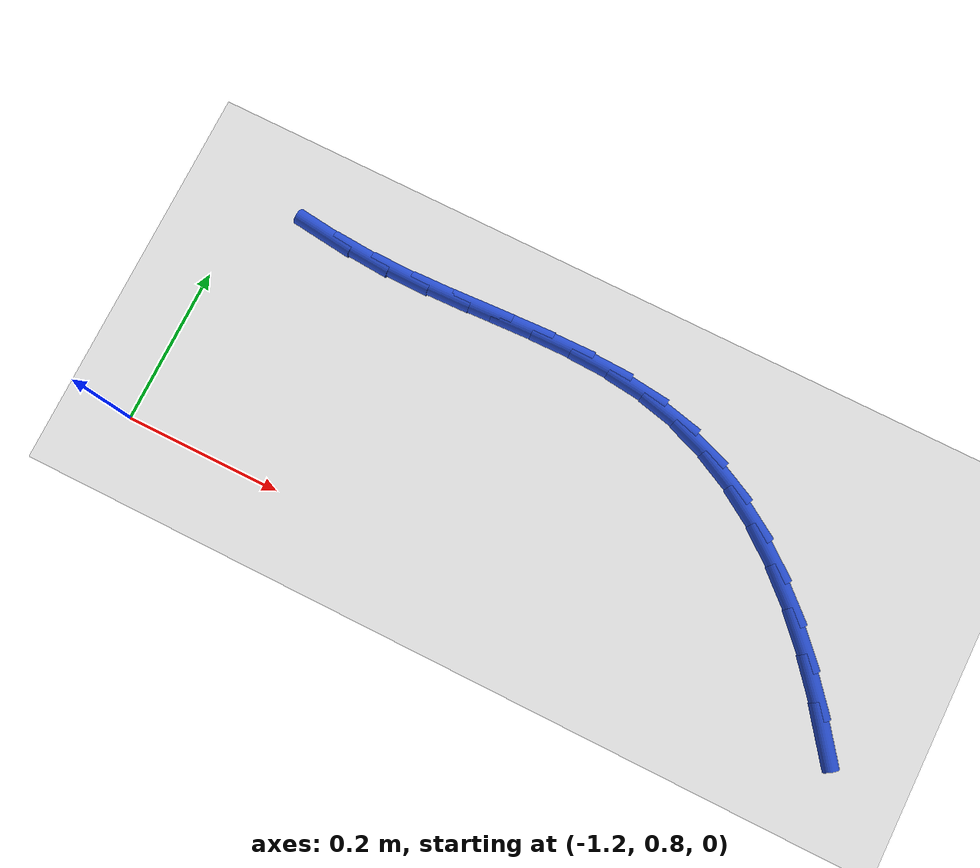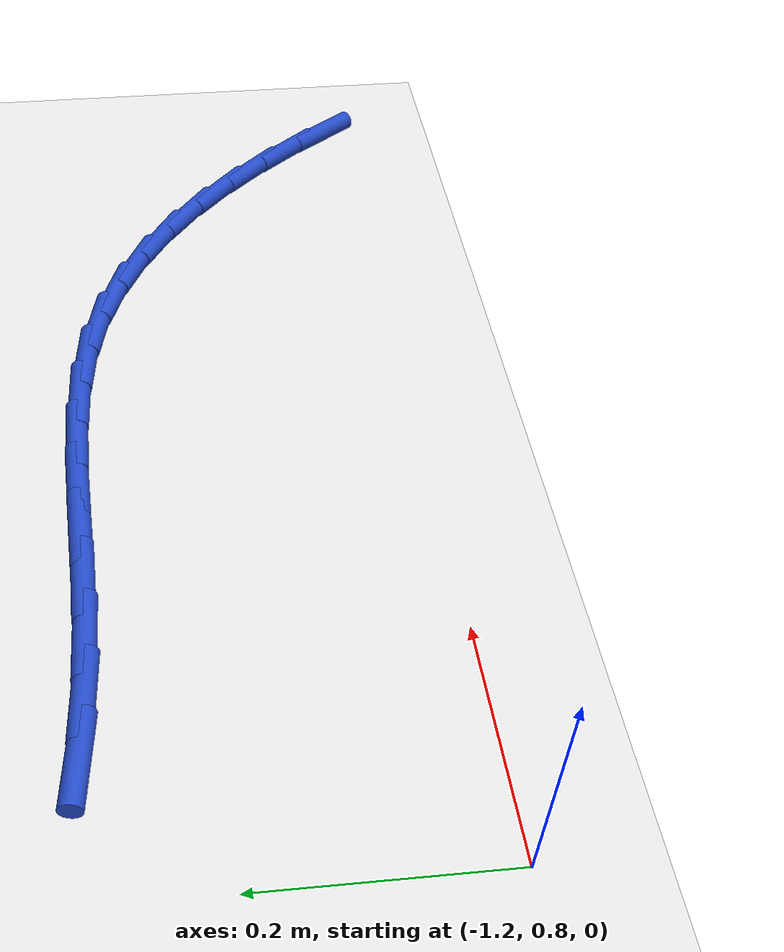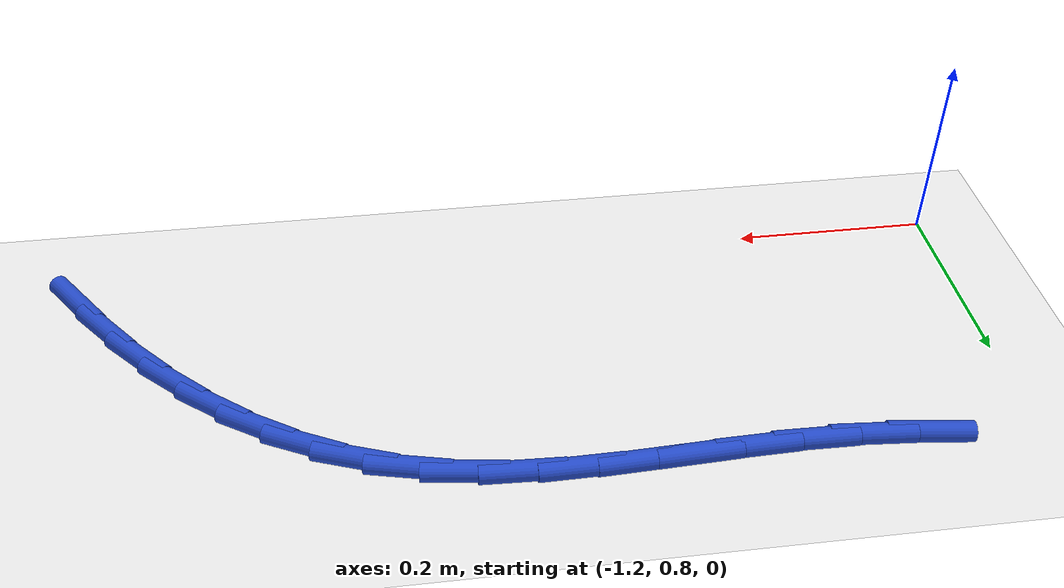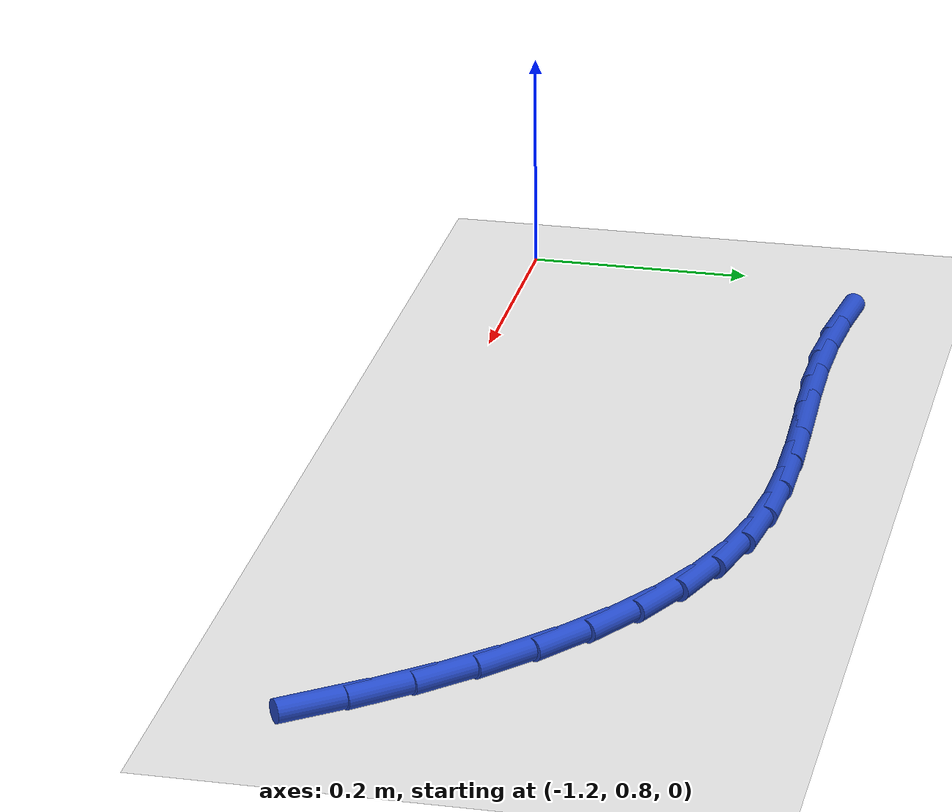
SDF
<sdf version="1.6">
 <world name="default">
  <model name="ground_plane">
   <static>1</static>
   <link name="link">
    <collision name="collision">
     <geometry><plane><normal>0 0 1</normal><size>100 100</size></plane></geometry>
     <surface><friction><ode><mu>100</mu><mu2>50</mu2></ode></friction></surface>
    </collision>
    <visual name="visual">
     <cast_shadows>0</cast_shadows>
     <geometry><plane><normal>0 0 1</normal><size>100 100</size></plane></geometry>
     <material>
      <script><uri>file://media/materials/scripts/gazebo.material</uri><name>Gazebo/WhiteGlow</name></script>
     </material>
    </visual>
   </link>
  </model>
  <model name="line">
   <link name="link_16">
    <pose>-0.2985263060611147 0.8291607156474057 0.01 0 1.57 -0.9376595781071306</pose>
    <collision name="collision">
     <geometry><cylinder><radius>0.01</radius><length>0.08</length></cylinder></geometry>
    </collision>
    <visual name="visual">
     <material>
      <script><name>Gazebo/Blue</name><uri>file://media/materials/scripts/gazebo.material</uri></script>
     </material>
     <geometry><cylinder><radius>0.01</radius><length>0.08</length></cylinder></geometry>
    </visual>
   </link>
   <link name="link_17">
    <pose>-0.33191441824124207 0.8746529436521213 0.01 0 1.57 -0.8812235999409279</pose>
    <collision name="collision">
     <geometry><cylinder><radius>0.01</radius><length>0.08</length></cylinder></geometry>
    </collision>
    <visual name="visual">
     <material>
      <script><name>Gazebo/Blue</name><uri>file://media/materials/scripts/gazebo.material</uri></script>
     </material>
     <geometry><cylinder><radius>0.01</radius><length>0.08</length></cylinder></geometry>
    </visual>
   </link>
   <link name="link_18">
    <pose>-0.3671163338067708 0.9173416965649344 0.01 0 1.57 -0.8168775620754979</pose>
    <collision name="collision">
     <geometry><cylinder><radius>0.01</radius><length>0.08</length></cylinder></geometry>
    </collision>
    <visual name="visual">
     <material>
      <script><name>Gazebo/Blue</name><uri>file://media/materials/scripts/gazebo.material</uri></script>
     </material>
     <geometry><cylinder><radius>0.01</radius><length>0.08</length></cylinder></geometry>
    </visual>
   </link>
   <link name="link_19">
    <pose>-0.4041742444052318 0.9568093829847586 0.01 0 1.57 -0.743608460455484</pose>
    <collision name="collision">
     <geometry><cylinder><radius>0.01</radius><length>0.08</length></cylinder></geometry>
    </collision>
    <visual name="visual">
     <material>
      <script><name>Gazebo/Blue</name><uri>file://media/materials/scripts/gazebo.material</uri></script>
     </material>
     <geometry><cylinder><radius>0.01</radius><length>0.08</length></cylinder></geometry>
    </visual>
   </link>
   <link name="link_20">
    <pose>-0.4431303416841561 0.9926384115105074 0.01 0 1.57 -0.6605006993845354</pose>
    <collision name="collision">
     <geometry><cylinder><radius>0.01</radius><length>0.08</length></cylinder></geometry>
    </collision>
    <visual name="visual">
     <material>
      <script><name>Gazebo/Blue</name><uri>file://media/materials/scripts/gazebo.material</uri></script>
     </material>
     <geometry><cylinder><radius>0.01</radius><length>0.08</length></cylinder></geometry>
    </visual>
   </link>
   <link name="link_21">
    <pose>-0.48402681729107483 1.024411190741095 0.01 0 1.57 -0.5669329177722653</pose>
    <collision name="collision">
     <geometry><cylinder><radius>0.01</radius><length>0.08</length></cylinder></geometry>
    </collision>
    <visual name="visual">
     <material>
      <script><name>Gazebo/Blue</name><uri>file://media/materials/scripts/gazebo.material</uri></script>
     </material>
     <geometry><cylinder><radius>0.01</radius><length>0.08</length></cylinder></geometry>
    </visual>
   </link>
   <link name="link_22">
    <pose>-0.5269058628735188 1.0517101292754347 0.01 0 1.57 -0.4628563224764566</pose>
    <collision name="collision">
     <geometry><cylinder><radius>0.01</radius><length>0.08</length></cylinder></geometry>
    </collision>
    <visual name="visual">
     <material>
      <script><name>Gazebo/Blue</name><uri>file://media/materials/scripts/gazebo.material</uri></script>
     </material>
     <geometry><cylinder><radius>0.01</radius><length>0.08</length></cylinder></geometry>
    </visual>
   </link>
   <link name="link_23">
    <pose>-0.5718096700790193 1.0741176357124411 0.01 0 1.57 -0.3491133038659414</pose>
    <collision name="collision">
     <geometry><cylinder><radius>0.01</radius><length>0.08</length></cylinder></geometry>
    </collision>
    <visual name="visual">
     <material>
      <script><name>Gazebo/Blue</name><uri>file://media/materials/scripts/gazebo.material</uri></script>
     </material>
     <geometry><cylinder><radius>0.01</radius><length>0.08</length></cylinder></geometry>
    </visual>
   </link>
   <link name="link_24">
    <pose>-0.6187804305551072 1.091216118651027 0.01 0 1.57 -0.22824404134933768</pose>
    <collision name="collision">
     <geometry><cylinder><radius>0.01</radius><length>0.08</length></cylinder></geometry>
    </collision>
    <visual name="visual">
     <material>
      <script><name>Gazebo/Blue</name><uri>file://media/materials/scripts/gazebo.material</uri></script>
     </material>
     <geometry><cylinder><radius>0.01</radius><length>0.08</length></cylinder></geometry>
    </visual>
   </link>
   <link name="link_25">
    <pose>-0.6678528323740427 1.1026152399058893 0.01 0 1.57 -0.11864713775809461</pose>
    <collision name="collision">
     <geometry><cylinder><radius>0.01</radius><length>0.08</length></cylinder></geometry>
    </collision>
    <visual name="visual">
     <material>
      <script><name>Gazebo/Blue</name><uri>file://media/materials/scripts/gazebo.material</uri></script>
     </material>
     <geometry><cylinder><radius>0.01</radius><length>0.08</length></cylinder></geometry>
    </visual>
   </link>
   <link name="link_26">
    <pose>-0.7188496284176339 1.1086944164109658 0.01 0 1.57 -0.038020621731585054</pose>
    <collision name="collision">
     <geometry><cylinder><radius>0.01</radius><length>0.08</length></cylinder></geometry>
    </collision>
    <visual name="visual">
     <material>
      <script><name>Gazebo/Blue</name><uri>file://media/materials/scripts/gazebo.material</uri></script>
     </material>
     <geometry><cylinder><radius>0.01</radius><length>0.08</length></cylinder></geometry>
    </visual>
   </link>
   <link name="link_27">
    <pose>-0.7713571521655634 1.1106917476280267 0.01 0 1.57 0.014950870576087174</pose>
    <collision name="collision">
     <geometry><cylinder><radius>0.01</radius><length>0.08</length></cylinder></geometry>
    </collision>
    <visual name="visual">
     <material>
      <script><name>Gazebo/Blue</name><uri>file://media/materials/scripts/gazebo.material</uri></script>
     </material>
     <geometry><cylinder><radius>0.01</radius><length>0.08</length></cylinder></geometry>
    </visual>
   </link>
   <link name="link_28">
    <pose>-0.8249493183250272 1.109890438381835 0.01 0 1.57 0.04267847432447619</pose>
    <collision name="collision">
     <geometry><cylinder><radius>0.01</radius><length>0.08</length></cylinder></geometry>
    </collision>
    <visual name="visual">
     <material>
      <script><name>Gazebo/Blue</name><uri>file://media/materials/scripts/gazebo.material</uri></script>
     </material>
     <geometry><cylinder><radius>0.01</radius><length>0.08</length></cylinder></geometry>
    </visual>
   </link>
   <link name="link_29">
    <pose>-0.8792000416032212 1.1075736934971545 0.01 0 1.57 0.046750532869200695</pose>
    <collision name="collision">
     <geometry><cylinder><radius>0.01</radius><length>0.08</length></cylinder></geometry>
    </collision>
    <visual name="visual">
     <material>
      <script><name>Gazebo/Blue</name><uri>file://media/materials/scripts/gazebo.material</uri></script>
     </material>
     <geometry><cylinder><radius>0.01</radius><length>0.08</length></cylinder></geometry>
    </visual>
   </link>
   <link name="link_30">
    <pose>-0.9336832367073407 1.1050247177987487 0.01 0 1.57 0.027585802681831847</pose>
    <collision name="collision">
     <geometry><cylinder><radius>0.01</radius><length>0.08</length></cylinder></geometry>
    </collision>
    <visual name="visual">
     <material>
      <script><name>Gazebo/Blue</name><uri>file://media/materials/scripts/gazebo.material</uri></script>
     </material>
     <geometry><cylinder><radius>0.01</radius><length>0.08</length></cylinder></geometry>
    </visual>
   </link>
   <link name="link_31">
    <pose>-0.9879728183445817 1.1035267161113809 0.01 0 1.57 -0.015559955053411446</pose>
    <collision name="collision">
     <geometry><cylinder><radius>0.01</radius><length>0.08</length></cylinder></geometry>
    </collision>
    <visual name="visual">
     <material>
      <script><name>Gazebo/Blue</name><uri>file://media/materials/scripts/gazebo.material</uri></script>
     </material>
     <geometry><cylinder><radius>0.01</radius><length>0.08</length></cylinder></geometry>
    </visual>
   </link>
   <link name="link_32">
    <pose>-1.0416430713244609 1.1043618902384897 0.01 0 1.57 -0.07422381804057417</pose>
    <collision name="collision">
     <geometry><cylinder><radius>0.01</radius><length>0.08</length></cylinder></geometry>
    </collision>
    <visual name="visual">
     <material>
      <script><name>Gazebo/Blue</name><uri>file://media/materials/scripts/gazebo.material</uri></script>
     </material>
     <geometry><cylinder><radius>0.01</radius><length>0.08</length></cylinder></geometry>
    </visual>
   </link>
   <link name="link_33">
    <pose>-1.094461249715894 1.1082894723303038 0.01 0 1.57 -0.12192668076725774</pose>
    <collision name="collision">
     <geometry><cylinder><radius>0.01</radius><length>0.08</length></cylinder></geometry>
    </collision>
    <visual name="visual">
     <material>
      <script><name>Gazebo/Blue</name><uri>file://media/materials/scripts/gazebo.material</uri></script>
     </material>
     <geometry><cylinder><radius>0.01</radius><length>0.08</length></cylinder></geometry>
    </visual>
   </link>
  </model>
 </world>
</sdf>
